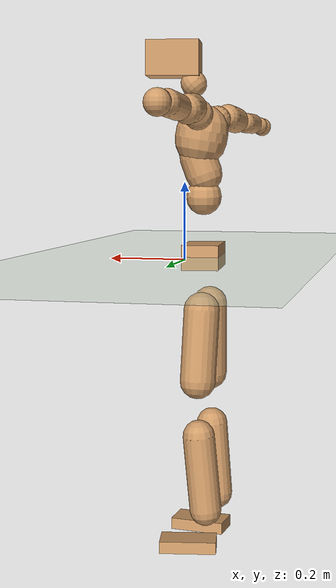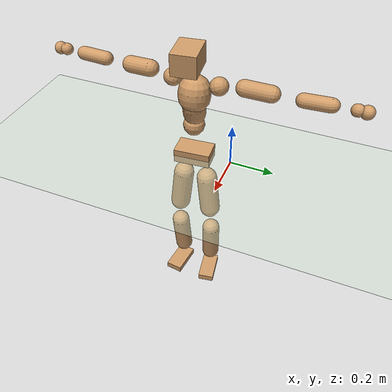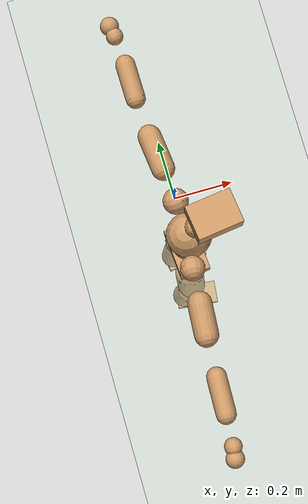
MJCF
<mujoco model="humanoid">
  <compiler coordinate="local" angle="radian"/>
  <default>
    <joint damping="0.0" armature="0.01" stiffness="0.0" limited="true"/>
    <geom conaffinity="1" condim="3" contype="7" margin="0.001" rgba="0.8 0.6 .4 1"/>
  </default>
  <asset>
    <texture type="skybox" builtin="gradient" rgb1=".4 .5 .6" rgb2="0 0 0" width="100" height="100"/>
    <texture builtin="flat" height="1278" mark="cross" markrgb="1 1 1" name="texgeom" random="0.01" rgb1="0.8 0.6 0.4" rgb2="0.8 0.6 0.4" type="cube" width="127"/>
    <texture builtin="checker" height="100" name="texplane" rgb1="0 0 0" rgb2="0.8 0.8 0.8" type="2d" width="100"/>
    <material name="MatPlane" reflectance="0.5" shininess="1" specular="1" texrepeat="60 60" texture="texplane"/>
    <material name="geom" texture="texgeom" texuniform="true"/>
  </asset>
  <worldbody>
    <light cutoff="100" diffuse="1 1 1" dir="-0 0 -1.3" directional="true" exponent="1" pos="0 0 1.3" specular=".1 .1 .1"/>
    <geom conaffinity="1" condim="3" name="floor" pos="0 0 0" rgba="0.8 0.9 0.8 1" size="100 100 .2" type="plane" material="MatPlane"/>
    <body name="Pelvis" pos="-0.004 -0.1813 0.0067">
      <freejoint name="Pelvis"/>
      <geom type="box" contype="1" conaffinity="1" density="5359.374909" pos="-0.0064 -0.0005 -0.0106" size="0.0506 0.0848 0.0337" quat="0.9992 0.0000 0.0000 0.0411" name="Pelvis"/>
      <body name="L_Hip" pos="-0.0166 0.0517 -0.0762">
        <joint name="L_Hip_x" type="hinge" pos="0 0 0" axis="1 0 0" stiffness="1600" damping="160" armature="0.02" range="-180.0000 180.0000"/>
        <joint name="L_Hip_y" type="hinge" pos="0 0 0" axis="0 1 0" stiffness="1600" damping="160" armature="0.02" range="-180.0000 180.0000"/>
        <joint name="L_Hip_z" type="hinge" pos="0 0 0" axis="0 0 1" stiffness="1600" damping="160" armature="0.02" range="-180.0000 180.0000"/>
        <geom type="capsule" contype="1" conaffinity="1" density="2040.816327" size="0.0492" fromto="0.0024 0.0085 -0.0787 0.0085 0.0294 -0.2726" name="L_Hip"/>
        <body name="L_Knee" pos="0.0109 0.0378 -0.3513">
          <joint name="L_Knee_x" type="hinge" pos="0 0 0" axis="1 0 0" stiffness="1600" damping="160" armature="0.02" range="-180.0000 180.0000"/>
          <joint name="L_Knee_y" type="hinge" pos="0 0 0" axis="0 1 0" stiffness="1600" damping="160" armature="0.02" range="-180.0000 180.0000"/>
          <joint name="L_Knee_z" type="hinge" pos="0 0 0" axis="0 0 1" stiffness="1600" damping="160" armature="0.02" range="-180.0000 180.0000"/>
          <geom type="capsule" contype="1" conaffinity="1" density="1234.567901" size="0.0441" fromto="-0.0064 -0.0022 -0.0738 -0.0247 -0.0084 -0.2846" name="L_Knee"/>
          <body name="L_Ankle" pos="-0.0311 -0.0106 -0.3584">
            <joint name="L_Ankle_x" type="hinge" pos="0 0 0" axis="1 0 0" stiffness="1600" damping="160" armature="0.02" range="-180.0000 180.0000"/>
            <joint name="L_Ankle_y" type="hinge" pos="0 0 0" axis="0 1 0" stiffness="1600" damping="160" armature="0.02" range="-180.0000 180.0000"/>
            <joint name="L_Ankle_z" type="hinge" pos="0 0 0" axis="0 0 1" stiffness="1600" damping="160" armature="0.02" range="-180.0000 180.0000"/>
            <geom type="box" contype="1" conaffinity="1" density="999.999956" pos="0.0541 0.0089 -0.0251" size="0.0782 0.0396 0.0168" quat="0.9967 0.0000 0.0000 0.0816" name="L_Ankle"/>
            <body name="L_Toe" pos="0.1083 0.0179 -0.0501">
              <joint name="L_Toe_x" type="hinge" pos="0 0 0" axis="1 0 0" stiffness="1000" damping="100" armature="0.02" range="-180.0000 180.0000"/>
              <joint name="L_Toe_y" type="hinge" pos="0 0 0" axis="0 1 0" stiffness="1000" damping="100" armature="0.02" range="-180.0000 180.0000"/>
              <joint name="L_Toe_z" type="hinge" pos="0 0 0" axis="0 0 1" stiffness="1000" damping="100" armature="0.02" range="-180.0000 180.0000"/>
              <geom type="box" contype="1" conaffinity="1" density="8974438.256505" pos="0.0000 0.0000 0.0269" size="0.0008 0.002 0.0009" quat="0.9960 0.0000 0.0000 0.0890" name="L_Toe"/>
            </body>
          </body>
        </body>
      </body>
      <body name="R_Hip" pos="-0.014 -0.0507 -0.0738">
        <joint name="R_Hip_x" type="hinge" pos="0 0 0" axis="1 0 0" stiffness="1600" damping="160" armature="0.02" range="-180.0000 180.0000"/>
        <joint name="R_Hip_y" type="hinge" pos="0 0 0" axis="0 1 0" stiffness="1600" damping="160" armature="0.02" range="-180.0000 180.0000"/>
        <joint name="R_Hip_z" type="hinge" pos="0 0 0" axis="0 0 1" stiffness="1600" damping="160" armature="0.02" range="-180.0000 180.0000"/>
        <geom type="capsule" contype="1" conaffinity="1" density="2040.816327" size="0.0486" fromto="0.0014 -0.0086 -0.0781 0.0052 -0.0310 -0.2813" name="R_Hip"/>
        <body name="R_Knee" pos="0.0066 -0.0396 -0.3594">
          <joint name="R_Knee_x" type="hinge" pos="0 0 0" axis="1 0 0" stiffness="1600" damping="160" armature="0.02" range="-180.0000 180.0000"/>
          <joint name="R_Knee_y" type="hinge" pos="0 0 0" axis="0 1 0" stiffness="1600" damping="160" armature="0.02" range="-180.0000 180.0000"/>
          <joint name="R_Knee_z" type="hinge" pos="0 0 0" axis="0 0 1" stiffness="1600" damping="160" armature="0.02" range="-180.0000 180.0000"/>
          <geom type="capsule" contype="1" conaffinity="1" density="1234.567901" size="0.0446" fromto="-0.0061 0.0028 -0.0743 -0.0231 0.0107 -0.2809" name="R_Knee"/>
          <body name="R_Ankle" pos="-0.0292 0.0135 -0.3552">
            <joint name="R_Ankle_x" type="hinge" pos="0 0 0" axis="1 0 0" stiffness="1600" damping="160" armature="0.02" range="-180.0000 180.0000"/>
            <joint name="R_Ankle_y" type="hinge" pos="0 0 0" axis="0 1 0" stiffness="1600" damping="160" armature="0.02" range="-180.0000 180.0000"/>
            <joint name="R_Ankle_z" type="hinge" pos="0 0 0" axis="0 0 1" stiffness="1600" damping="160" armature="0.02" range="-180.0000 180.0000"/>
            <geom type="box" contype="1" conaffinity="1" density="999.999979" pos="0.0549 -0.0062 -0.0199" size="0.0777 0.0417 0.0164" quat="0.9984 0.0000 0.0000 -0.0566" name="R_Ankle"/>
            <body name="R_Toe" pos="0.1098 -0.0125 -0.0397">
              <joint name="R_Toe_x" type="hinge" pos="0 0 0" axis="1 0 0" stiffness="1000" damping="100" armature="0.02" range="-180.0000 180.0000"/>
              <joint name="R_Toe_y" type="hinge" pos="0 0 0" axis="0 1 0" stiffness="1000" damping="100" armature="0.02" range="-180.0000 180.0000"/>
              <joint name="R_Toe_z" type="hinge" pos="0 0 0" axis="0 0 1" stiffness="1000" damping="100" armature="0.02" range="-180.0000 180.0000"/>
              <geom type="box" contype="1" conaffinity="1" density="9088312.604301" pos="0.0000 0.0000 0.0230" size="0.0007 0.002 0.001" quat="0.9989 0.0000 0.0000 -0.0468" name="R_Toe"/>
            </body>
          </body>
        </body>
      </body>
      <body name="Torso" pos="-0.0076 -0.0042 0.0866">
        <joint name="Torso_x" type="hinge" pos="0 0 0" axis="1 0 0" stiffness="2000" damping="200" armature="0.02" range="-180.0000 180.0000"/>
        <joint name="Torso_y" type="hinge" pos="0 0 0" axis="0 1 0" stiffness="2000" damping="200" armature="0.02" range="-180.0000 180.0000"/>
        <joint name="Torso_z" type="hinge" pos="0 0 0" axis="0 0 1" stiffness="2000" damping="200" armature="0.02" range="-180.0000 180.0000"/>
        <geom type="capsule" contype="1" conaffinity="1" density="2040.816327" size="0.0493" fromto="0.0004 0.0028 0.0642 0.0004 0.0029 0.0662" name="Torso"/>
        <body name="Spine" pos="0.0008 0.0057 0.1303">
          <joint name="Spine_x" type="hinge" pos="0 0 0" axis="1 0 0" stiffness="2000" damping="200" armature="0.02" range="-180.0000 180.0000"/>
          <joint name="Spine_y" type="hinge" pos="0 0 0" axis="0 1 0" stiffness="2000" damping="200" armature="0.02" range="-180.0000 180.0000"/>
          <joint name="Spine_z" type="hinge" pos="0 0 0" axis="0 0 1" stiffness="2000" damping="200" armature="0.02" range="-180.0000 180.0000"/>
          <geom type="capsule" contype="1" conaffinity="1" density="2040.816327" size="0.0507" fromto="0.0165 0.0037 0.0477 -0.0012 -0.0003 -0.0035" name="Spine"/>
          <body name="Chest" pos="0.0153 0.0034 0.0443">
            <joint name="Chest_x" type="hinge" pos="0 0 0" axis="1 0 0" stiffness="2000" damping="200" armature="0.02" range="-180.0000 180.0000"/>
            <joint name="Chest_y" type="hinge" pos="0 0 0" axis="0 1 0" stiffness="2000" damping="200" armature="0.02" range="-180.0000 180.0000"/>
            <joint name="Chest_z" type="hinge" pos="0 0 0" axis="0 0 1" stiffness="2000" damping="200" armature="0.02" range="-180.0000 180.0000"/>
            <geom type="capsule" contype="1" conaffinity="1" density="2040.816327" size="0.0712" fromto="-0.0125 -0.0011 0.0700 -0.0080 -0.0007 0.0445" name="Chest"/>
            <body name="Neck" pos="-0.0146 -0.0037 0.1633">
              <joint name="Neck_x" type="hinge" pos="0 0 0" axis="1 0 0" stiffness="1000" damping="100" armature="0.02" range="-180.0000 180.0000"/>
              <joint name="Neck_y" type="hinge" pos="0 0 0" axis="0 1 0" stiffness="1000" damping="100" armature="0.02" range="-180.0000 180.0000"/>
              <joint name="Neck_z" type="hinge" pos="0 0 0" axis="0 0 1" stiffness="1000" damping="100" armature="0.02" range="-180.0000 180.0000"/>
              <geom type="capsule" contype="1" conaffinity="1" density="1000" size="0.0354" fromto="0.0256 0.0025 0.0318 0.0268 0.0026 0.0333" name="Neck"/>
              <body name="Head" pos="0.0524 0.0051 0.0651">
                <joint name="Head_x" type="hinge" pos="0 0 0" axis="1 0 0" stiffness="1000" damping="100" armature="0.02" range="-180.0000 180.0000"/>
                <joint name="Head_y" type="hinge" pos="0 0 0" axis="0 1 0" stiffness="1000" damping="100" armature="0.02" range="-180.0000 180.0000"/>
                <joint name="Head_z" type="hinge" pos="0 0 0" axis="0 0 1" stiffness="1000" damping="100" armature="0.02" range="-180.0000 180.0000"/>
                <geom type="box" contype="1" conaffinity="1" density="2249.999997" pos="0.0272 0.0036 0.0336" size="0.0716 0.0537 0.0473" quat="0.9979 0.0000 0.0000 0.0650" name="Head"/>
              </body>
            </body>
            <body name="L_Thorax" pos="-0.0213 0.065 0.092">
              <joint name="L_Thorax_x" type="hinge" pos="0 0 0" axis="1 0 0" stiffness="1000" damping="100" armature="0.02" range="-180.0000 180.0000"/>
              <joint name="L_Thorax_y" type="hinge" pos="0 0 0" axis="0 1 0" stiffness="1000" damping="100" armature="0.02" range="-180.0000 180.0000"/>
              <joint name="L_Thorax_z" type="hinge" pos="0 0 0" axis="0 0 1" stiffness="1000" damping="100" armature="0.02" range="-180.0000 180.0000"/>
              <geom type="capsule" contype="1" conaffinity="1" density="1000" size="0.0402" fromto="-0.0017 0.0388 0.0161 -0.0018 0.0406 0.0168" name="L_Thorax"/>
              <body name="L_Shoulder" pos="-0.0036 0.0794 0.0329">
                <joint name="L_Shoulder_x" type="hinge" pos="0 0 0" axis="1 0 0" stiffness="1000" damping="100" armature="0.02" range="-720.0000 720.0000"/>
                <joint name="L_Shoulder_y" type="hinge" pos="0 0 0" axis="0 1 0" stiffness="1000" damping="100" armature="0.02" range="-720.0000 720.0000"/>
                <joint name="L_Shoulder_z" type="hinge" pos="0 0 0" axis="0 0 1" stiffness="1000" damping="100" armature="0.02" range="-720.0000 720.0000"/>
                <geom type="capsule" contype="1" conaffinity="1" density="1000" size="0.0368" fromto="-0.0073 0.0662 -0.0052 -0.0197 0.1782 -0.0139" name="L_Shoulder"/>
                <body name="L_Elbow" pos="-0.0271 0.2445 -0.019">
                  <joint name="L_Elbow_x" type="hinge" pos="0 0 0" axis="1 0 0" stiffness="1000" damping="100" armature="0.02" range="-720.0000 720.0000"/>
                  <joint name="L_Elbow_y" type="hinge" pos="0 0 0" axis="0 1 0" stiffness="1000" damping="100" armature="0.02" range="-720.0000 720.0000"/>
                  <joint name="L_Elbow_z" type="hinge" pos="0 0 0" axis="0 0 1" stiffness="1000" damping="100" armature="0.02" range="-720.0000 720.0000"/>
                  <geom type="capsule" contype="1" conaffinity="1" density="1000" size="0.031" fromto="-0.0008 0.0610 0.0022 -0.0023 0.1744 0.0063" name="L_Elbow"/>
                  <body name="L_Wrist" pos="-0.0032 0.2354 0.0086">
                    <joint name="L_Wrist_x" type="hinge" pos="0 0 0" axis="1 0 0" stiffness="600" damping="60" armature="0.02" range="-180.0000 180.0000"/>
                    <joint name="L_Wrist_y" type="hinge" pos="0 0 0" axis="0 1 0" stiffness="600" damping="60" armature="0.02" range="-180.0000 180.0000"/>
                    <joint name="L_Wrist_z" type="hinge" pos="0 0 0" axis="0 0 1" stiffness="600" damping="60" armature="0.02" range="-180.0000 180.0000"/>
                    <geom type="capsule" contype="1" conaffinity="1" density="1000" size="0.027" fromto="-0.0062 0.0359 -0.0046 -0.0065 0.0379 -0.0048" name="L_Wrist"/>
                    <body name="L_Hand" pos="-0.0127 0.0738 -0.0094">
                      <joint name="L_Hand_x" type="hinge" pos="0 0 0" axis="1 0 0" stiffness="600" damping="60" armature="0.02" range="-180.0000 180.0000"/>
                      <joint name="L_Hand_y" type="hinge" pos="0 0 0" axis="0 1 0" stiffness="600" damping="60" armature="0.02" range="-180.0000 180.0000"/>
                      <joint name="L_Hand_z" type="hinge" pos="0 0 0" axis="0 0 1" stiffness="600" damping="60" armature="0.02" range="-180.0000 180.0000"/>
                      <geom type="sphere" contype="1" conaffinity="1" density="1000" size="0.0297" pos="0.0000 0.0000 0.0000" name="L_Hand"/>
                    </body>
                  </body>
                </body>
              </body>
            </body>
            <body name="R_Thorax" pos="-0.0256 -0.0668 0.0884">
              <joint name="R_Thorax_x" type="hinge" pos="0 0 0" axis="1 0 0" stiffness="1000" damping="100" armature="0.02" range="-180.0000 180.0000"/>
              <joint name="R_Thorax_y" type="hinge" pos="0 0 0" axis="0 1 0" stiffness="1000" damping="100" armature="0.02" range="-180.0000 180.0000"/>
              <joint name="R_Thorax_z" type="hinge" pos="0 0 0" axis="0 0 1" stiffness="1000" damping="100" armature="0.02" range="-180.0000 180.0000"/>
              <geom type="capsule" contype="1" conaffinity="1" density="1000" size="0.0392" fromto="-0.0051 -0.0412 0.0147 -0.0053 -0.0431 0.0154" name="R_Thorax"/>
              <body name="R_Shoulder" pos="-0.0104 -0.0843 0.0301">
                <joint name="R_Shoulder_x" type="hinge" pos="0 0 0" axis="1 0 0" stiffness="1000" damping="100" armature="0.02" range="-720.0000 720.0000"/>
                <joint name="R_Shoulder_y" type="hinge" pos="0 0 0" axis="0 1 0" stiffness="1000" damping="100" armature="0.02" range="-720.0000 720.0000"/>
                <joint name="R_Shoulder_z" type="hinge" pos="0 0 0" axis="0 0 1" stiffness="1000" damping="100" armature="0.02" range="-720.0000 720.0000"/>
                <geom type="capsule" contype="1" conaffinity="1" density="1000" size="0.0379" fromto="-0.0047 -0.0676 -0.0033 -0.0115 -0.1662 -0.0081" name="R_Shoulder"/>
                <body name="R_Elbow" pos="-0.0162 -0.2338 -0.0113">
                  <joint name="R_Elbow_x" type="hinge" pos="0 0 0" axis="1 0 0" stiffness="1000" damping="100" armature="0.02" range="-720.0000 720.0000"/>
                  <joint name="R_Elbow_y" type="hinge" pos="0 0 0" axis="0 1 0" stiffness="1000" damping="100" armature="0.02" range="-720.0000 720.0000"/>
                  <joint name="R_Elbow_z" type="hinge" pos="0 0 0" axis="0 0 1" stiffness="1000" damping="100" armature="0.02" range="-720.0000 720.0000"/>
                  <geom type="capsule" contype="1" conaffinity="1" density="1000" size="0.0312" fromto="-0.0019 -0.0611 0.0009 -0.0056 -0.1772 0.0025" name="R_Elbow"/>
                  <body name="R_Wrist" pos="-0.0076 -0.2383 0.0034">
                    <joint name="R_Wrist_x" type="hinge" pos="0 0 0" axis="1 0 0" stiffness="600" damping="60" armature="0.02" range="-180.0000 180.0000"/>
                    <joint name="R_Wrist_y" type="hinge" pos="0 0 0" axis="0 1 0" stiffness="600" damping="60" armature="0.02" range="-180.0000 180.0000"/>
                    <joint name="R_Wrist_z" type="hinge" pos="0 0 0" axis="0 0 1" stiffness="600" damping="60" armature="0.02" range="-180.0000 180.0000"/>
                    <geom type="capsule" contype="1" conaffinity="1" density="1000" size="0.0274" fromto="-0.0045 -0.0355 -0.0033 -0.0047 -0.0375 -0.0034" name="R_Wrist"/>
                    <body name="R_Hand" pos="-0.0092 -0.0731 -0.0067">
                      <joint name="R_Hand_x" type="hinge" pos="0 0 0" axis="1 0 0" stiffness="600" damping="60" armature="0.02" range="-180.0000 180.0000"/>
                      <joint name="R_Hand_y" type="hinge" pos="0 0 0" axis="0 1 0" stiffness="600" damping="60" armature="0.02" range="-180.0000 180.0000"/>
                      <joint name="R_Hand_z" type="hinge" pos="0 0 0" axis="0 0 1" stiffness="600" damping="60" armature="0.02" range="-180.0000 180.0000"/>
                      <geom type="sphere" contype="1" conaffinity="1" density="1000" size="0.0292" pos="0.0000 0.0000 0.0000" name="R_Hand"/>
                    </body>
                  </body>
                </body>
              </body>
            </body>
          </body>
        </body>
      </body>
    </body>
  </worldbody>
  <actuator>
    <motor name="L_Hip_x" joint="L_Hip_x" gear="500"/>
    <motor name="L_Hip_y" joint="L_Hip_y" gear="500"/>
    <motor name="L_Hip_z" joint="L_Hip_z" gear="500"/>
    <motor name="L_Knee_x" joint="L_Knee_x" gear="500"/>
    <motor name="L_Knee_y" joint="L_Knee_y" gear="500"/>
    <motor name="L_Knee_z" joint="L_Knee_z" gear="500"/>
    <motor name="L_Ankle_x" joint="L_Ankle_x" gear="500"/>
    <motor name="L_Ankle_y" joint="L_Ankle_y" gear="500"/>
    <motor name="L_Ankle_z" joint="L_Ankle_z" gear="500"/>
    <motor name="L_Toe_x" joint="L_Toe_x" gear="500"/>
    <motor name="L_Toe_y" joint="L_Toe_y" gear="500"/>
    <motor name="L_Toe_z" joint="L_Toe_z" gear="500"/>
    <motor name="R_Hip_x" joint="R_Hip_x" gear="500"/>
    <motor name="R_Hip_y" joint="R_Hip_y" gear="500"/>
    <motor name="R_Hip_z" joint="R_Hip_z" gear="500"/>
    <motor name="R_Knee_x" joint="R_Knee_x" gear="500"/>
    <motor name="R_Knee_y" joint="R_Knee_y" gear="500"/>
    <motor name="R_Knee_z" joint="R_Knee_z" gear="500"/>
    <motor name="R_Ankle_x" joint="R_Ankle_x" gear="500"/>
    <motor name="R_Ankle_y" joint="R_Ankle_y" gear="500"/>
    <motor name="R_Ankle_z" joint="R_Ankle_z" gear="500"/>
    <motor name="R_Toe_x" joint="R_Toe_x" gear="500"/>
    <motor name="R_Toe_y" joint="R_Toe_y" gear="500"/>
    <motor name="R_Toe_z" joint="R_Toe_z" gear="500"/>
    <motor name="Torso_x" joint="Torso_x" gear="500"/>
    <motor name="Torso_y" joint="Torso_y" gear="500"/>
    <motor name="Torso_z" joint="Torso_z" gear="500"/>
    <motor name="Spine_x" joint="Spine_x" gear="500"/>
    <motor name="Spine_y" joint="Spine_y" gear="500"/>
    <motor name="Spine_z" joint="Spine_z" gear="500"/>
    <motor name="Chest_x" joint="Chest_x" gear="500"/>
    <motor name="Chest_y" joint="Chest_y" gear="500"/>
    <motor name="Chest_z" joint="Chest_z" gear="500"/>
    <motor name="Neck_x" joint="Neck_x" gear="500"/>
    <motor name="Neck_y" joint="Neck_y" gear="500"/>
    <motor name="Neck_z" joint="Neck_z" gear="500"/>
    <motor name="Head_x" joint="Head_x" gear="500"/>
    <motor name="Head_y" joint="Head_y" gear="500"/>
    <motor name="Head_z" joint="Head_z" gear="500"/>
    <motor name="L_Thorax_x" joint="L_Thorax_x" gear="500"/>
    <motor name="L_Thorax_y" joint="L_Thorax_y" gear="500"/>
    <motor name="L_Thorax_z" joint="L_Thorax_z" gear="500"/>
    <motor name="L_Shoulder_x" joint="L_Shoulder_x" gear="500"/>
    <motor name="L_Shoulder_y" joint="L_Shoulder_y" gear="500"/>
    <motor name="L_Shoulder_z" joint="L_Shoulder_z" gear="500"/>
    <motor name="L_Elbow_x" joint="L_Elbow_x" gear="500"/>
    <motor name="L_Elbow_y" joint="L_Elbow_y" gear="500"/>
    <motor name="L_Elbow_z" joint="L_Elbow_z" gear="500"/>
    <motor name="L_Wrist_x" joint="L_Wrist_x" gear="500"/>
    <motor name="L_Wrist_y" joint="L_Wrist_y" gear="500"/>
    <motor name="L_Wrist_z" joint="L_Wrist_z" gear="500"/>
    <motor name="L_Hand_x" joint="L_Hand_x" gear="500"/>
    <motor name="L_Hand_y" joint="L_Hand_y" gear="500"/>
    <motor name="L_Hand_z" joint="L_Hand_z" gear="500"/>
    <motor name="R_Thorax_x" joint="R_Thorax_x" gear="500"/>
    <motor name="R_Thorax_y" joint="R_Thorax_y" gear="500"/>
    <motor name="R_Thorax_z" joint="R_Thorax_z" gear="500"/>
    <motor name="R_Shoulder_x" joint="R_Shoulder_x" gear="500"/>
    <motor name="R_Shoulder_y" joint="R_Shoulder_y" gear="500"/>
    <motor name="R_Shoulder_z" joint="R_Shoulder_z" gear="500"/>
    <motor name="R_Elbow_x" joint="R_Elbow_x" gear="500"/>
    <motor name="R_Elbow_y" joint="R_Elbow_y" gear="500"/>
    <motor name="R_Elbow_z" joint="R_Elbow_z" gear="500"/>
    <motor name="R_Wrist_x" joint="R_Wrist_x" gear="500"/>
    <motor name="R_Wrist_y" joint="R_Wrist_y" gear="500"/>
    <motor name="R_Wrist_z" joint="R_Wrist_z" gear="500"/>
    <motor name="R_Hand_x" joint="R_Hand_x" gear="500"/>
    <motor name="R_Hand_y" joint="R_Hand_y" gear="500"/>
    <motor name="R_Hand_z" joint="R_Hand_z" gear="500"/>
  </actuator>
  <contact>
    <exclude body1="Torso" body2="Chest"/>
    <exclude body1="Head" body2="Chest"/>
    <exclude body1="R_Knee" body2="R_Toe"/>
    <exclude body1="R_Knee" body2="L_Ankle"/>
    <exclude body1="R_Knee" body2="L_Toe"/>
    <exclude body1="L_Knee" body2="L_Toe"/>
    <exclude body1="L_Knee" body2="R_Ankle"/>
    <exclude body1="L_Knee" body2="R_Toe"/>
    <exclude body1="L_Shoulder" body2="Chest"/>
    <exclude body1="R_Shoulder" body2="Chest"/>
  </contact>
  <sensor/>
  <size njmax="700" nconmax="700"/>
</mujoco>
